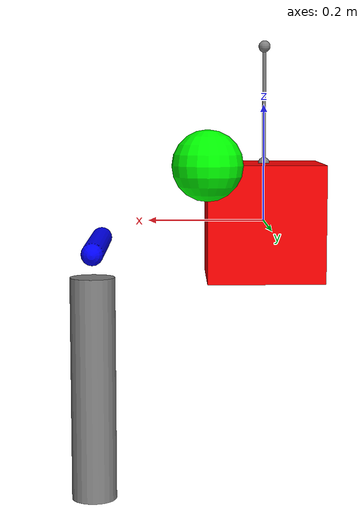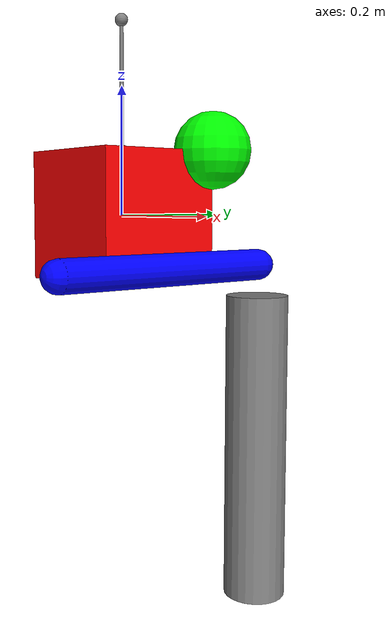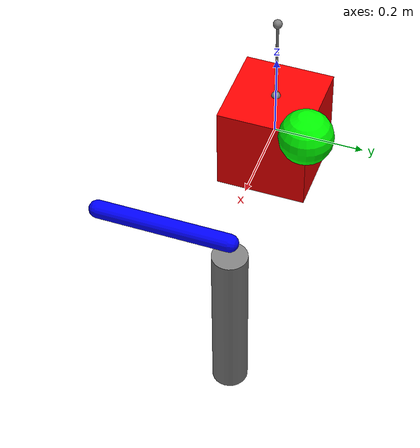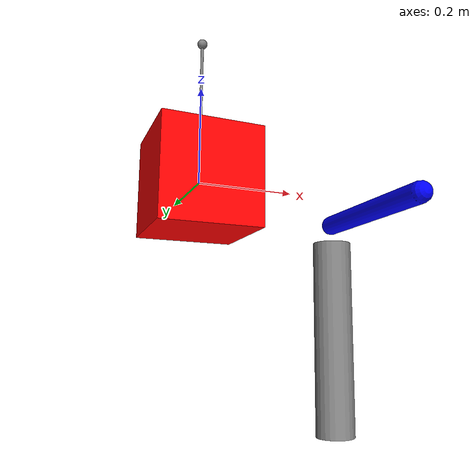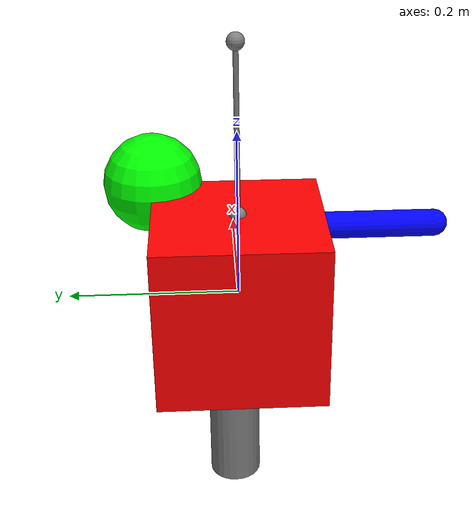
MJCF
<mujoco>
    <asset>
        <texture name="grid" type="2d" builtin="checker" rgb1=".1 .2 .3"
        rgb2=".2 .3 .4" width="300" height="300" mark="none"/>
        <material name="grid" texture="grid" texrepeat="1 1" texuniform="true"
        reflectance=".2"/>
    </asset>

    <worldbody>
        <light name="light" pos="0 0 1"/>
        <geom name="floor" type="plane" pos="0 0 -5" size="2 2 .1" material="grid"/>
        <site name="anchor" pos="0 0 .3" size=".01"/>
        <camera name="fixed" pos="0 -1.3 .5" xyaxes="1 0 0 0 1 2"/>

        <geom name="pole" type="cylinder" fromto=".3 0 -.5 .3 0 -.1" size=".04"/>
        <body name="bat" pos=".3 0 -.1">
            <joint name="swing" type="hinge" damping="1" axis="0 0 1"/>
            <geom name="bat" type="capsule" fromto="0 0 .04 0 -.3 .04" size=".02"
            rgba="0 0 1 1"/>
        </body>

        <body name="box_and_sphere" pos="0 0 0">
            <joint name="free" type="free"/>
            <geom name="red_box" type="box" size=".1 .1 .1" rgba="1 0 0 1"/>
            <geom name="green_ball" size=".06" pos=".1 .1 .1" rgba="0 1 0 1"/>
            <site name="hook" pos="-.0 -.0 .1" size=".01"/>
            <site name="IMU" />
        </body>
    </worldbody>

    <tendon>
        <spatial name="wire" limited="true" range="0 0.2" width="0.003">
            <site site="anchor"/>
            <site site="hook"/>
        </spatial>
    </tendon>

    <actuator>
        <motor name="my_motor" joint="swing" gear="1" forcerange=".1 10"/>
    </actuator>

    <sensor>
        <accelerometer name="accelerometer" site="IMU"/>
    </sensor>
</mujoco>
